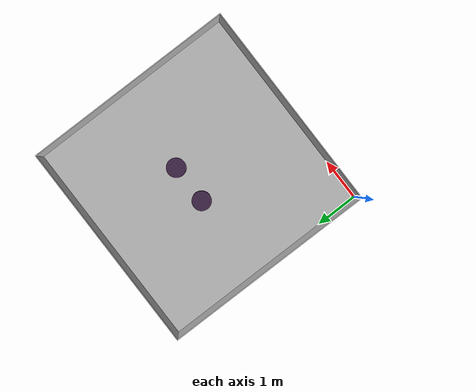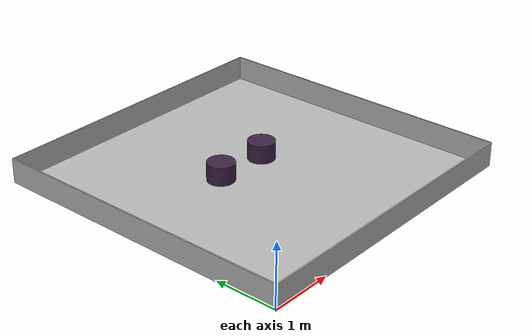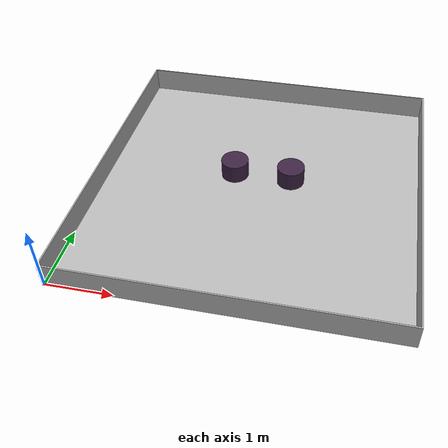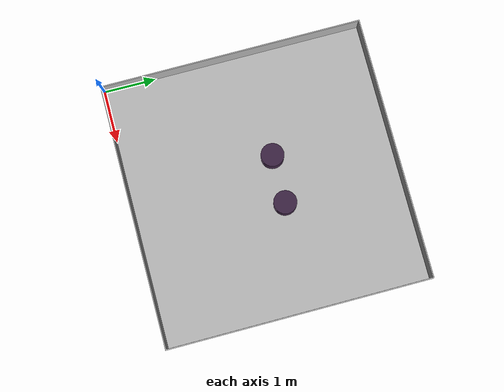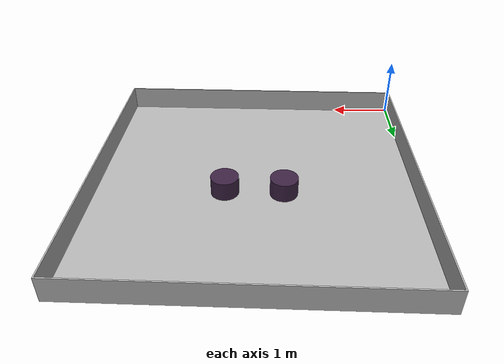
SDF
<?xml version='1.0' encoding='utf-8'?>
<sdf version="1.4">
<world name="test">
  <scene>
    <ambient>0.5 0.5 0.5 1.0</ambient>
    <shadows>0</shadows>
    <sky />
  </scene>
  <include>
    <uri>model://sun</uri>
    <pose>0.0 0.0 15.0 0 0 0</pose>
    <cast_shadows>false</cast_shadows>
    <attenuation>
      <constant>0.5</constant>
      <linear>0.01</linear>
      <quadratic>0.0</quadratic>
      <range>100</range>
    </attenuation>
  </include>
  <light name="Light 1" type="point">
         <pose>0 0 15 0 0 0</pose>
         <diffuse>0.225 0.225 0.225 1</diffuse>
         <specular>.1 .1 .1 1</specular>
         <attenuation>
                <constant>0.4</constant>
                <linear>0.01</linear>
                <quadratic>0.00</quadratic>
                <range>50</range>
         </attenuation>
         <direction>0 0 -1</direction>
         <cast_shadows>false</cast_shadows>
  </light>
  <include>
    <uri>model://models/test</uri>
    <pose>0 0 0 0 0 0</pose>
    <name>racetrack</name>
  </include>
  <model name="shape_0">
    <pose>2.0443 2.7700 0.1500 0 0 0.0000</pose>
    <link name="link">
      <collision name="collision">
        <geometry><cylinder><radius>0.22</radius><length>0.3</length></cylinder></geometry>
      </collision>
      <visual name="visual">
        <geometry><cylinder><radius>0.22</radius><length>0.3</length></cylinder></geometry>
        <material>
          <ambient>0.235 0.137 0.263 1</ambient>
          <diffuse>0.235 0.137 0.263 1</diffuse>
        </material>
      </visual>
    </link>
    <static>true</static>
  </model>
  <model name="shape_1">
    <pose>2.9625 2.7700 0.1500 0 0 0.0000</pose>
    <link name="link">
      <collision name="collision">
        <geometry><cylinder><radius>0.22</radius><length>0.3</length></cylinder></geometry>
      </collision>
      <visual name="visual">
        <geometry><cylinder><radius>0.22</radius><length>0.3</length></cylinder></geometry>
        <material>
          <ambient>0.235 0.137 0.263 1</ambient>
          <diffuse>0.235 0.137 0.263 1</diffuse>
        </material>
      </visual>
    </link>
    <static>true</static>
  </model>
</world>
</sdf>

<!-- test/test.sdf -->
<sdf version="1.4">
<model name="template_model">
<link name="track">
<collision name="collision">
<pose>0 0 0 0 0 0</pose>
<geometry>
<mesh>
<uri>model://meshes/test/test_collision.dae</uri>
</mesh>
</geometry>
</collision>
<visual name="visual">
<pose>0 0 0 0 0 0</pose>
<geometry>
<mesh>
<uri>model://meshes/test/test.dae</uri>
</mesh>
</geometry>
</visual>
<visual name="wall">
<pose>0 0 0 0 0 0</pose>
<geometry>
<mesh>
<uri>model://meshes/test/wall.dae</uri>
</mesh>
</geometry>
</visual>
<collision name="wall_collision">
<pose>0 0 0 0 0 0</pose>
<geometry>
<mesh>
<uri>model://meshes/test/wall.dae</uri>
</mesh>
</geometry>
</collision>
</link>
<static>1</static>
</model>
</sdf>
